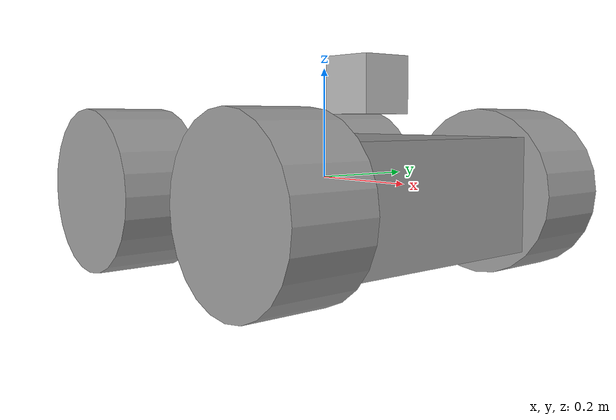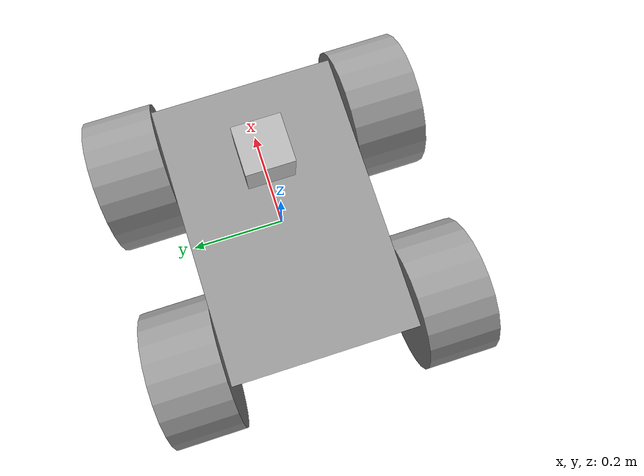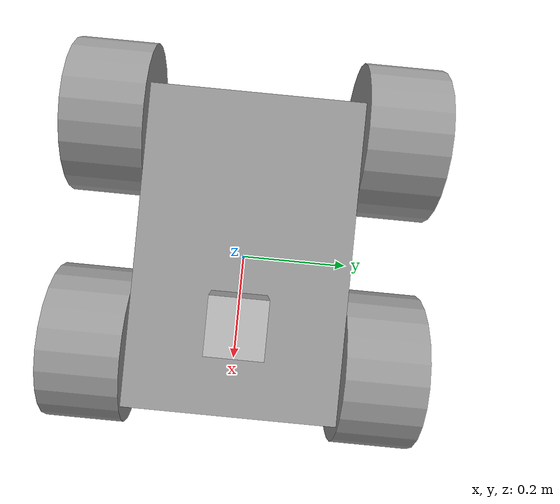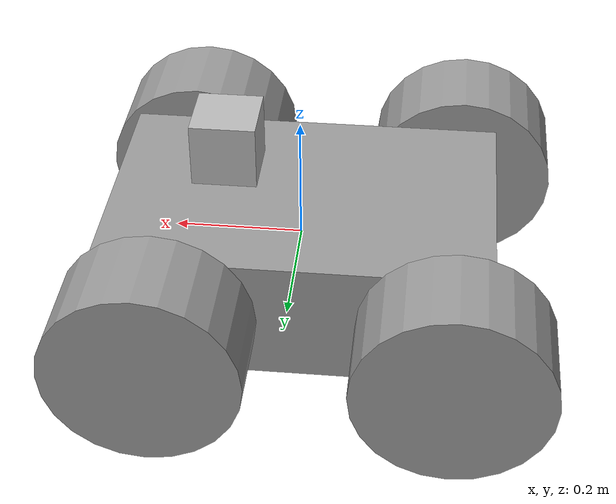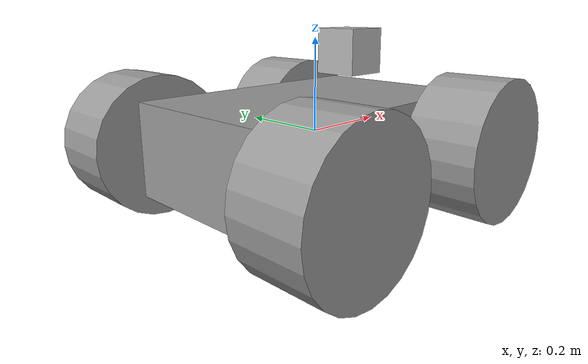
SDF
<?xml version='1.0'?>
<sdf version='1.6'>
  <model name='4WRobot'>
    <link name='link_0_clone'>
      <pose frame=''>-0.250965 0.275015 -0.023333 1.5708 -0 0</pose>
      <inertial>
        <mass>1</mass>
        <inertia>
          <ixx>0.145833</ixx>
          <ixy>0</ixy>
          <ixz>0</ixz>
          <iyy>0.145833</iyy>
          <iyz>0</iyz>
          <izz>0.125</izz>
        </inertia>
        <pose frame=''>0 0 0 0 -0 0</pose>
      </inertial>
      <self_collide>0</self_collide>
      <kinematic>0</kinematic>
      <visual name='visual'>
        <pose frame=''>0 0 0 0 -0 0</pose>
        <geometry>
          <cylinder>
            <radius>0.15</radius>
            <length>0.15</length>
          </cylinder>
        </geometry>
        <material>
          <lighting>1</lighting>
          <script>
            <uri>file://media/materials/scripts/gazebo.material</uri>
            <name>Gazebo/Grey</name>
          </script>
          <ambient>0.3 0.3 0.3 1</ambient>
          <diffuse>0.7 0.7 0.7 1</diffuse>
          <specular>0.01 0.01 0.01 1</specular>
          <emissive>0 0 0 1</emissive>
          <shader type='vertex'>
            <normal_map>__default__</normal_map>
          </shader>
        </material>
        <transparency>0</transparency>
        <cast_shadows>1</cast_shadows>
      </visual>
      <collision name='collision'>
        <laser_retro>0</laser_retro>
        <max_contacts>10</max_contacts>
        <pose frame=''>0 0 0 0 -0 0</pose>
        <geometry>
          <cylinder>
            <radius>0.15</radius>
            <length>0.15</length>
          </cylinder>
        </geometry>
        <surface>
          <friction>
            <ode>
              <mu>1</mu>
              <mu2>1</mu2>
              <fdir1>0 0 0</fdir1>
              <slip1>0</slip1>
              <slip2>0</slip2>
            </ode>
            <torsional>
              <coefficient>1</coefficient>
              <patch_radius>0</patch_radius>
              <surface_radius>0</surface_radius>
              <use_patch_radius>1</use_patch_radius>
              <ode>
                <slip>0</slip>
              </ode>
            </torsional>
          </friction>
          <bounce>
            <restitution_coefficient>0</restitution_coefficient>
            <threshold>1e+06</threshold>
          </bounce>
          <contact>
            <collide_without_contact>0</collide_without_contact>
            <collide_without_contact_bitmask>1</collide_without_contact_bitmask>
            <collide_bitmask>1</collide_bitmask>
            <ode>
              <soft_cfm>0</soft_cfm>
              <soft_erp>0.2</soft_erp>
              <kp>1e+13</kp>
              <kd>1</kd>
              <max_vel>0.01</max_vel>
              <min_depth>0</min_depth>
            </ode>
            <bullet>
              <split_impulse>1</split_impulse>
              <split_impulse_penetration_threshold>-0.01</split_impulse_penetration_threshold>
              <soft_cfm>0</soft_cfm>
              <soft_erp>0.2</soft_erp>
              <kp>1e+13</kp>
              <kd>1</kd>
            </bullet>
          </contact>
        </surface>
      </collision>
    </link>
    <link name='link_0_clone_0'>
      <pose frame=''>0.196484 -0.275072 -0.023334 1.5708 -0 -1e-06</pose>
      <inertial>
        <mass>1</mass>
        <inertia>
          <ixx>0.145833</ixx>
          <ixy>0</ixy>
          <ixz>0</ixz>
          <iyy>0.145833</iyy>
          <iyz>0</iyz>
          <izz>0.125</izz>
        </inertia>
        <pose frame=''>0 0 0 0 -0 0</pose>
      </inertial>
      <self_collide>0</self_collide>
      <kinematic>0</kinematic>
      <visual name='visual'>
        <pose frame=''>0 0 0 0 -0 0</pose>
        <geometry>
          <cylinder>
            <radius>0.15</radius>
            <length>0.15</length>
          </cylinder>
        </geometry>
        <material>
          <lighting>1</lighting>
          <script>
            <uri>file://media/materials/scripts/gazebo.material</uri>
            <name>Gazebo/Grey</name>
          </script>
          <ambient>0.3 0.3 0.3 1</ambient>
          <diffuse>0.7 0.7 0.7 1</diffuse>
          <specular>0.01 0.01 0.01 1</specular>
          <emissive>0 0 0 1</emissive>
          <shader type='vertex'>
            <normal_map>__default__</normal_map>
          </shader>
        </material>
        <transparency>0</transparency>
        <cast_shadows>1</cast_shadows>
      </visual>
      <collision name='collision'>
        <laser_retro>0</laser_retro>
        <max_contacts>10</max_contacts>
        <pose frame=''>0 0 0 0 -0 0</pose>
        <geometry>
          <cylinder>
            <radius>0.15</radius>
            <length>0.15</length>
          </cylinder>
        </geometry>
        <surface>
          <friction>
            <ode>
              <mu>1</mu>
              <mu2>1</mu2>
              <fdir1>0 0 0</fdir1>
              <slip1>0</slip1>
              <slip2>0</slip2>
            </ode>
            <torsional>
              <coefficient>1</coefficient>
              <patch_radius>0</patch_radius>
              <surface_radius>0</surface_radius>
              <use_patch_radius>1</use_patch_radius>
              <ode>
                <slip>0</slip>
              </ode>
            </torsional>
          </friction>
          <bounce>
            <restitution_coefficient>0</restitution_coefficient>
            <threshold>1e+06</threshold>
          </bounce>
          <contact>
            <collide_without_contact>0</collide_without_contact>
            <collide_without_contact_bitmask>1</collide_without_contact_bitmask>
            <collide_bitmask>1</collide_bitmask>
            <ode>
              <soft_cfm>0</soft_cfm>
              <soft_erp>0.2</soft_erp>
              <kp>1e+13</kp>
              <kd>1</kd>
              <max_vel>0.01</max_vel>
              <min_depth>0</min_depth>
            </ode>
            <bullet>
              <split_impulse>1</split_impulse>
              <split_impulse_penetration_threshold>-0.01</split_impulse_penetration_threshold>
              <soft_cfm>0</soft_cfm>
              <soft_erp>0.2</soft_erp>
              <kp>1e+13</kp>
              <kd>1</kd>
            </bullet>
          </contact>
        </surface>
      </collision>
    </link>
    <link name='link_0_clone_0_clone'>
      <pose frame=''>-0.25097 -0.274988 -0.023333 1.5708 -0 0</pose>
      <inertial>
        <mass>1</mass>
        <inertia>
          <ixx>0.145833</ixx>
          <ixy>0</ixy>
          <ixz>0</ixz>
          <iyy>0.145833</iyy>
          <iyz>0</iyz>
          <izz>0.125</izz>
        </inertia>
        <pose frame=''>0 0 0 0 -0 0</pose>
      </inertial>
      <self_collide>0</self_collide>
      <kinematic>0</kinematic>
      <gravity>1</gravity>
      <visual name='visual'>
        <pose frame=''>0 0 0 0 -0 0</pose>
        <geometry>
          <cylinder>
            <radius>0.15</radius>
            <length>0.15</length>
          </cylinder>
        </geometry>
        <material>
          <lighting>1</lighting>
          <script>
            <uri>file://media/materials/scripts/gazebo.material</uri>
            <name>Gazebo/Grey</name>
          </script>
          <ambient>0.3 0.3 0.3 1</ambient>
          <diffuse>0.7 0.7 0.7 1</diffuse>
          <specular>0.01 0.01 0.01 1</specular>
          <emissive>0 0 0 1</emissive>
          <shader type='vertex'>
            <normal_map>__default__</normal_map>
          </shader>
        </material>
        <transparency>0</transparency>
        <cast_shadows>1</cast_shadows>
      </visual>
      <collision name='collision'>
        <laser_retro>0</laser_retro>
        <max_contacts>10</max_contacts>
        <pose frame=''>0 0 0 0 -0 0</pose>
        <geometry>
          <cylinder>
            <radius>0.15</radius>
            <length>0.15</length>
          </cylinder>
        </geometry>
        <surface>
          <friction>
            <ode>
              <mu>1</mu>
              <mu2>1</mu2>
              <fdir1>0 0 0</fdir1>
              <slip1>0</slip1>
              <slip2>0</slip2>
            </ode>
            <torsional>
              <coefficient>1</coefficient>
              <patch_radius>0</patch_radius>
              <surface_radius>0</surface_radius>
              <use_patch_radius>1</use_patch_radius>
              <ode>
                <slip>0</slip>
              </ode>
            </torsional>
          </friction>
          <bounce>
            <restitution_coefficient>0</restitution_coefficient>
            <threshold>1e+06</threshold>
          </bounce>
          <contact>
            <collide_without_contact>0</collide_without_contact>
            <collide_without_contact_bitmask>1</collide_without_contact_bitmask>
            <collide_bitmask>1</collide_bitmask>
            <ode>
              <soft_cfm>0</soft_cfm>
              <soft_erp>0.2</soft_erp>
              <kp>1e+13</kp>
              <kd>1</kd>
              <max_vel>0.01</max_vel>
              <min_depth>0</min_depth>
            </ode>
            <bullet>
              <split_impulse>1</split_impulse>
              <split_impulse_penetration_threshold>-0.01</split_impulse_penetration_threshold>
              <soft_cfm>0</soft_cfm>
              <soft_erp>0.2</soft_erp>
              <kp>1e+13</kp>
              <kd>1</kd>
            </bullet>
          </contact>
        </surface>
      </collision>
    </link>
    <link name='link_0_clone_1'>
      <pose frame=''>0.196484 0.275015 -0.023332 1.5708 -0 0</pose>
      <inertial>
        <mass>1</mass>
        <inertia>
          <ixx>0.145833</ixx>
          <ixy>0</ixy>
          <ixz>0</ixz>
          <iyy>0.145833</iyy>
          <iyz>0</iyz>
          <izz>0.125</izz>
        </inertia>
        <pose frame=''>0 0 0 0 -0 0</pose>
      </inertial>
      <self_collide>0</self_collide>
      <kinematic>0</kinematic>
      <gravity>1</gravity>
      <visual name='visual'>
        <pose frame=''>0 0 0 0 -0 0</pose>
        <geometry>
          <cylinder>
            <radius>0.15</radius>
            <length>0.15</length>
          </cylinder>
        </geometry>
        <material>
          <lighting>1</lighting>
          <script>
            <uri>file://media/materials/scripts/gazebo.material</uri>
            <name>Gazebo/Grey</name>
          </script>
          <ambient>0.3 0.3 0.3 1</ambient>
          <diffuse>0.7 0.7 0.7 1</diffuse>
          <specular>0.01 0.01 0.01 1</specular>
          <emissive>0 0 0 1</emissive>
          <shader type='vertex'>
            <normal_map>__default__</normal_map>
          </shader>
        </material>
        <transparency>0</transparency>
        <cast_shadows>1</cast_shadows>
      </visual>
      <collision name='collision'>
        <laser_retro>0</laser_retro>
        <max_contacts>10</max_contacts>
        <pose frame=''>0 0 0 0 -0 0</pose>
        <geometry>
          <cylinder>
            <radius>0.15</radius>
            <length>0.15</length>
          </cylinder>
        </geometry>
        <surface>
          <friction>
            <ode>
              <mu>1</mu>
              <mu2>1</mu2>
              <fdir1>0 0 0</fdir1>
              <slip1>0</slip1>
              <slip2>0</slip2>
            </ode>
            <torsional>
              <coefficient>1</coefficient>
              <patch_radius>0</patch_radius>
              <surface_radius>0</surface_radius>
              <use_patch_radius>1</use_patch_radius>
              <ode>
                <slip>0</slip>
              </ode>
            </torsional>
          </friction>
          <bounce>
            <restitution_coefficient>0</restitution_coefficient>
            <threshold>1e+06</threshold>
          </bounce>
          <contact>
            <collide_without_contact>0</collide_without_contact>
            <collide_without_contact_bitmask>1</collide_without_contact_bitmask>
            <collide_bitmask>1</collide_bitmask>
            <ode>
              <soft_cfm>0</soft_cfm>
              <soft_erp>0.2</soft_erp>
              <kp>1e+13</kp>
              <kd>1</kd>
              <max_vel>0.01</max_vel>
              <min_depth>0</min_depth>
            </ode>
            <bullet>
              <split_impulse>1</split_impulse>
              <split_impulse_penetration_threshold>-0.01</split_impulse_penetration_threshold>
              <soft_cfm>0</soft_cfm>
              <soft_erp>0.2</soft_erp>
              <kp>1e+13</kp>
              <kd>1</kd>
            </bullet>
          </contact>
        </surface>
      </collision>
    </link>
    <link name='link_1'>
      <pose frame=''>-0.00443 1.3e-05 -0.023333 2e-06 0 -1e-06</pose>
      <inertial>
        <mass>1</mass>
        <inertia>
          <ixx>0.166667</ixx>
          <ixy>0</ixy>
          <ixz>0</ixz>
          <iyy>0.166667</iyy>
          <iyz>0</iyz>
          <izz>0.166667</izz>
        </inertia>
        <pose frame=''>0 0 0 0 -0 0</pose>
      </inertial>
      <gravity>1</gravity>
      <self_collide>0</self_collide>
      <kinematic>0</kinematic>
      <visual name='visual'>
        <pose frame=''>0 0 0 0 -0 0</pose>
        <geometry>
          <box>
            <size>0.6 0.4 0.2</size>
          </box>
        </geometry>
        <material>
          <lighting>1</lighting>
          <script>
            <uri>file://media/materials/scripts/gazebo.material</uri>
            <name>Gazebo/Grey</name>
          </script>
          <ambient>0.3 0.3 0.3 1</ambient>
          <diffuse>0.7 0.7 0.7 1</diffuse>
          <specular>0.01 0.01 0.01 1</specular>
          <emissive>0 0 0 1</emissive>
          <shader type='vertex'>
            <normal_map>__default__</normal_map>
          </shader>
        </material>
        <transparency>0</transparency>
        <cast_shadows>1</cast_shadows>
      </visual>
      <collision name='collision'>
        <laser_retro>0</laser_retro>
        <max_contacts>10</max_contacts>
        <pose frame=''>0 0 0 0 -0 0</pose>
        <geometry>
          <box>
            <size>0.6 0.4 0.2</size>
          </box>
        </geometry>
        <surface>
          <friction>
            <ode>
              <mu>1</mu>
              <mu2>1</mu2>
              <fdir1>0 0 0</fdir1>
              <slip1>0</slip1>
              <slip2>0</slip2>
            </ode>
            <torsional>
              <coefficient>1</coefficient>
              <patch_radius>0</patch_radius>
              <surface_radius>0</surface_radius>
              <use_patch_radius>1</use_patch_radius>
              <ode>
                <slip>0</slip>
              </ode>
            </torsional>
          </friction>
          <bounce>
            <restitution_coefficient>0</restitution_coefficient>
            <threshold>1e+06</threshold>
          </bounce>
          <contact>
            <collide_without_contact>0</collide_without_contact>
            <collide_without_contact_bitmask>1</collide_without_contact_bitmask>
            <collide_bitmask>1</collide_bitmask>
            <ode>
              <soft_cfm>0</soft_cfm>
              <soft_erp>0.2</soft_erp>
              <kp>1e+13</kp>
              <kd>1</kd>
              <max_vel>0.01</max_vel>
              <min_depth>0</min_depth>
            </ode>
            <bullet>
              <split_impulse>1</split_impulse>
              <split_impulse_penetration_threshold>-0.01</split_impulse_penetration_threshold>
              <soft_cfm>0</soft_cfm>
              <soft_erp>0.2</soft_erp>
              <kp>1e+13</kp>
              <kd>1</kd>
            </bullet>
          </contact>
        </surface>
      </collision>
    </link>
    <model name='depth_camera'>
      <link name='link'>
        <pose frame=''>0 0 0.05 0 -0 0</pose>
        <inertial>
          <mass>0.1</mass>
          <inertia>
            <ixx>0.000166667</ixx>
            <iyy>0.000166667</iyy>
            <izz>0.000166667</izz>
            <ixy>0</ixy>
            <ixz>0</ixz>
            <iyz>0</iyz>
          </inertia>
        </inertial>
        <collision name='collision'>
          <geometry>
            <box>
              <size>0.1 0.1 0.1</size>
            </box>
          </geometry>
        </collision>
        <visual name='visual'>
          <geometry>
            <box>
              <size>0.1 0.1 0.1</size>
            </box>
          </geometry>
        </visual>
        <sensor name='camera' type='depth'>
          <camera name='__default__'>
            <horizontal_fov>1.047</horizontal_fov>
            <image>
              <width>320</width>
              <height>240</height>
            </image>
            <clip>
              <near>0.1</near>
              <far>100</far>
            </clip>
          </camera>
          <always_on>1</always_on>
          <update_rate>30</update_rate>
          <visualize>1</visualize>
        </sensor>
      </link>
      <pose frame=''>0.112426 1.3e-05 0.116667 0 -0 0</pose>
    </model>
    <joint name='link_1_JOINT_3' type='revolute'>
      <parent>link_1</parent>
      <child>link_0_clone_0</child>
      <pose frame=''>0 0 0 0 -0 0</pose>
      <axis>
        <xyz>0 0 1</xyz>
        <use_parent_model_frame>0</use_parent_model_frame>
        <limit>
          <lower>-1.79769e+308</lower>
          <upper>1.79769e+308</upper>
          <effort>-1</effort>
          <velocity>-1</velocity>
        </limit>
        <dynamics>
          <spring_reference>0</spring_reference>
          <spring_stiffness>0</spring_stiffness>
          <damping>0</damping>
          <friction>0</friction>
        </dynamics>
      </axis>
      <physics>
        <ode>
          <limit>
            <cfm>0</cfm>
            <erp>0.2</erp>
          </limit>
          <suspension>
            <cfm>0</cfm>
            <erp>0.2</erp>
          </suspension>
        </ode>
      </physics>
    </joint>
    <joint name='link_1_JOINT_4' type='revolute'>
      <parent>link_1</parent>
      <child>link_0_clone_1</child>
      <pose frame=''>0 0 0 0 -0 0</pose>
      <axis>
        <xyz>0 0 1</xyz>
        <use_parent_model_frame>0</use_parent_model_frame>
        <limit>
          <lower>-1.79769e+308</lower>
          <upper>1.79769e+308</upper>
          <effort>-1</effort>
          <velocity>-1</velocity>
        </limit>
        <dynamics>
          <spring_reference>0</spring_reference>
          <spring_stiffness>0</spring_stiffness>
          <damping>0</damping>
          <friction>0</friction>
        </dynamics>
      </axis>
      <physics>
        <ode>
          <limit>
            <cfm>0</cfm>
            <erp>0.2</erp>
          </limit>
          <suspension>
            <cfm>0</cfm>
            <erp>0.2</erp>
          </suspension>
        </ode>
      </physics>
    </joint>
    <joint name='link_1_JOINT_5' type='revolute'>
      <parent>link_1</parent>
      <child>link_0_clone_0_clone</child>
      <pose frame=''>0 0 0 0 -0 0</pose>
      <axis>
        <xyz>0 0 1</xyz>
        <use_parent_model_frame>0</use_parent_model_frame>
        <limit>
          <lower>-1.79769e+308</lower>
          <upper>1.79769e+308</upper>
          <effort>-1</effort>
          <velocity>-1</velocity>
        </limit>
        <dynamics>
          <spring_reference>0</spring_reference>
          <spring_stiffness>0</spring_stiffness>
          <damping>0</damping>
          <friction>0</friction>
        </dynamics>
      </axis>
      <physics>
        <ode>
          <limit>
            <cfm>0</cfm>
            <erp>0.2</erp>
          </limit>
          <suspension>
            <cfm>0</cfm>
            <erp>0.2</erp>
          </suspension>
        </ode>
      </physics>
    </joint>
    <joint name='link_1_JOINT_6' type='revolute'>
      <parent>link_1</parent>
      <child>link_0_clone</child>
      <pose frame=''>0 0 0 0 -0 0</pose>
      <axis>
        <xyz>0 0 1</xyz>
        <use_parent_model_frame>0</use_parent_model_frame>
        <limit>
          <lower>-1.79769e+308</lower>
          <upper>1.79769e+308</upper>
          <effort>-1</effort>
          <velocity>-1</velocity>
        </limit>
        <dynamics>
          <spring_reference>0</spring_reference>
          <spring_stiffness>0</spring_stiffness>
          <damping>0</damping>
          <friction>0</friction>
        </dynamics>
      </axis>
      <physics>
        <ode>
          <limit>
            <cfm>0</cfm>
            <erp>0.2</erp>
          </limit>
          <suspension>
            <cfm>0</cfm>
            <erp>0.2</erp>
          </suspension>
        </ode>
      </physics>
    </joint>
    <joint name='link_1_JOINT_9' type='fixed'>
      <parent>link_1</parent>
      <child>depth_camera::link</child>
      <pose frame=''>0 0 0 0 -0 0</pose>
      <physics>
        <ode>
          <limit>
            <cfm>0</cfm>
            <erp>0.2</erp>
          </limit>
          <suspension>
            <cfm>0</cfm>
            <erp>0.2</erp>
          </suspension>
        </ode>
      </physics>
    </joint>
    <static>0</static>
    <allow_auto_disable>1</allow_auto_disable>
  </model>
</sdf>
